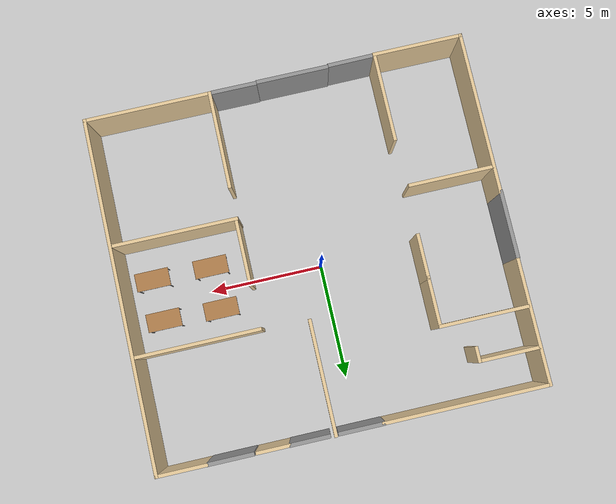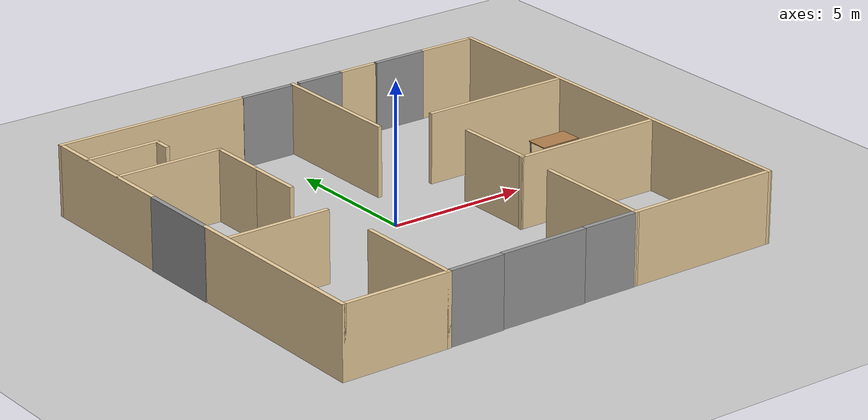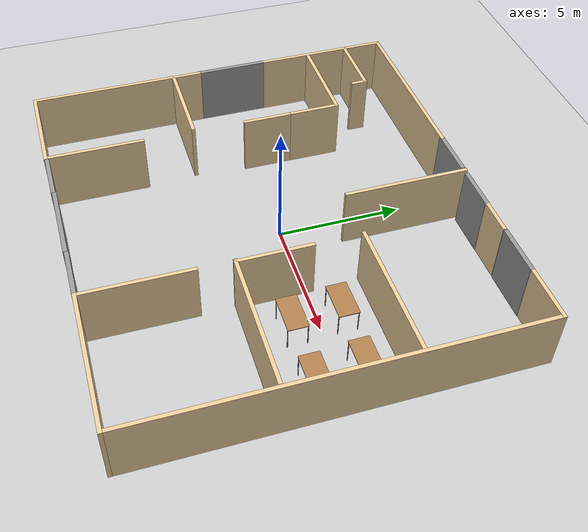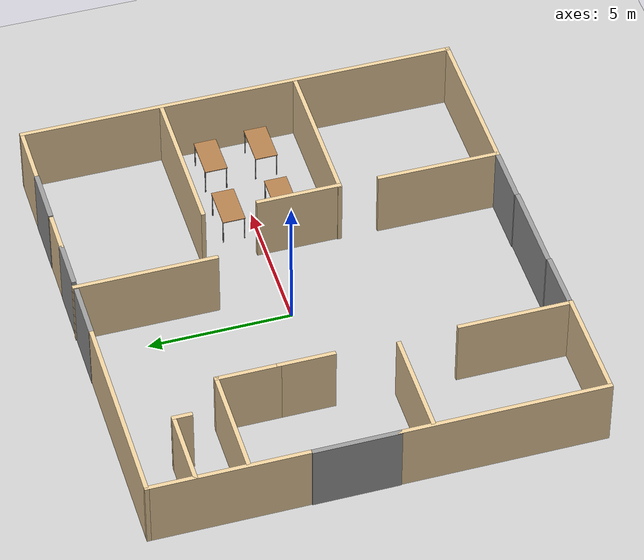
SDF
<sdf version="1.6">
 <world name="default">
  <model name="ground_plane">
   <static>1</static>
   <link name="link">
    <collision name="collision">
     <geometry><plane><normal>0 0 1</normal><size>100 100</size></plane></geometry>
     <surface><friction><ode><mu>100</mu><mu2>50</mu2></ode></friction></surface>
    </collision>
    <visual name="visual">
     <cast_shadows>0</cast_shadows>
     <geometry><plane><normal>0 0 1</normal><size>100 100</size></plane></geometry>
     <material>
      <script><uri>file://media/materials/scripts/gazebo.material</uri><name>Gazebo/Grey</name></script>
     </material>
    </visual>
   </link>
  </model>
  <model name="Building">
   <pose>0.22723 -0.57657 0 0 -0 0</pose>
   <link name="Door_1">
    <collision name="Door_1_Collision">
     <geometry><box><size>2 0.17 2.5</size></box></geometry>
     <pose>0 0 1.25 0 -0 0</pose>
    </collision>
    <visual name="Door_1_Visual">
     <pose>0 0 1.25 0 -0 0</pose>
     <geometry><box><size>2 0.17 2.5</size></box></geometry>
     <material>
      <script><uri>file://media/materials/scripts/gazebo.material</uri><name>Gazebo/Grey</name></script>
     </material>
    </visual>
    <pose>1.77302 -7.63321 0 0 -0 3.1393</pose>
   </link>
   <link name="Door_2">
    <collision name="Door_2_Collision">
     <geometry><box><size>2 0.17 2.5</size></box></geometry>
     <pose>0 0 1.25 0 -0 0</pose>
    </collision>
    <visual name="Door_2_Visual">
     <pose>0 0 1.25 0 -0 0</pose>
     <geometry><box><size>2 0.17 2.5</size></box></geometry>
     <material>
      <script><uri>file://media/materials/scripts/gazebo.material</uri><name>Gazebo/Grey</name></script>
     </material>
    </visual>
    <pose>-3.41797 -7.702 0 0 -0 -3.13381</pose>
   </link>
   <link name="Door_3">
    <collision name="Door_3_Collision">
     <geometry><box><size>1.75 0.17 2.5</size></box></geometry>
     <pose>0 0 1.25 0 -0 0</pose>
    </collision>
    <visual name="Door_3_Visual">
     <pose>0 0 1.25 0 -0 0</pose>
     <geometry><box><size>1.75 0.17 2.5</size></box></geometry>
     <material>
      <script><uri>file://media/materials/scripts/gazebo.material</uri><name>Gazebo/Grey</name></script>
     </material>
    </visual>
    <pose>1.87994 7.70603 0 0 -0 0</pose>
   </link>
   <link name="Wall_12">
    <collision name="Wall_12_Collision">
     <geometry><box><size>7.25 0.15 2.5</size></box></geometry>
     <pose>0 0 1.25 0 -0 0</pose>
    </collision>
    <visual name="Wall_12_Visual">
     <pose>0 0 1.25 0 -0 0</pose>
     <geometry><box><size>7.25 0.15 2.5</size></box></geometry>
     <material>
      <script><uri>file://media/materials/scripts/gazebo.material</uri><name>Gazebo/Grey</name></script>
      <ambient>0.921569 0.807843 0.615686 1</ambient>
     </material>
     <meta><layer>0</layer></meta>
    </visual>
    <pose>-8.3547 -4.19265 0 0 -0 -1.5708</pose>
   </link>
   <link name="Wall_14">
    <collision name="Wall_14_Collision">
     <geometry><box><size>7.25 0.15 2.5</size></box></geometry>
     <pose>0 0 1.25 0 -0 0</pose>
    </collision>
    <visual name="Wall_14_Visual">
     <pose>0 0 1.25 0 -0 0</pose>
     <geometry><box><size>7.25 0.15 2.5</size></box></geometry>
     <material>
      <script><uri>file://media/materials/scripts/gazebo.material</uri><name>Gazebo/Grey</name></script>
      <ambient>0.921569 0.807843 0.615686 1</ambient>
     </material>
     <meta><layer>0</layer></meta>
    </visual>
    <pose>-4.80157 7.70348 0 0 -0 0</pose>
   </link>
   <link name="Wall_16">
    <collision name="Wall_16_Collision">
     <geometry><box><size>5 0.15 2.5</size></box></geometry>
     <pose>0 0 1.25 0 -0 0</pose>
    </collision>
    <visual name="Wall_16_Visual">
     <pose>0 0 1.25 0 -0 0</pose>
     <geometry><box><size>5 0.15 2.5</size></box></geometry>
     <material>
      <script><uri>file://media/materials/scripts/gazebo.material</uri><name>Gazebo/Grey</name></script>
      <ambient>0.921569 0.807843 0.615686 1</ambient>
     </material>
     <meta><layer>0</layer></meta>
    </visual>
    <pose>0.791999 5.31765 0 0 -0 -1.5708</pose>
   </link>
   <link name="Wall_18">
    <collision name="Wall_18_Collision">
     <geometry><box><size>2.75 0.15 2.5</size></box></geometry>
     <pose>0 0 1.25 0 -0 0</pose>
    </collision>
    <visual name="Wall_18_Visual">
     <pose>0 0 1.25 0 -0 0</pose>
     <geometry><box><size>2.75 0.15 2.5</size></box></geometry>
     <material>
      <script><uri>file://media/materials/scripts/gazebo.material</uri><name>Gazebo/Grey</name></script>
      <ambient>0.921569 0.807843 0.615686 1</ambient>
     </material>
     <meta><layer>0</layer></meta>
    </visual>
    <pose>-7.02626 6.10787 0 0 -0 0</pose>
   </link>
   <link name="Wall_19">
    <collision name="Wall_19_Collision">
     <geometry><box><size>0.7 0.15 2.5</size></box></geometry>
     <pose>0 0 1.25 0 -0 0</pose>
    </collision>
    <visual name="Wall_19_Visual">
     <pose>0 0 1.25 0 -0 0</pose>
     <geometry><box><size>0.7 0.15 2.5</size></box></geometry>
     <material>
      <script><uri>file://media/materials/scripts/gazebo.material</uri><name>Gazebo/Grey</name></script>
      <ambient>0.921569 0.807843 0.615686 1</ambient>
     </material>
     <meta><layer>0</layer></meta>
    </visual>
    <pose>-5.72626 5.83287 0 0 -0 -1.5708</pose>
   </link>
   <link name="Wall_23">
    <collision name="Wall_23_Collision">
     <geometry><box><size>4 0.15 2.5</size></box></geometry>
     <pose>0 0 1.25 0 -0 0</pose>
    </collision>
    <visual name="Wall_23_Visual">
     <pose>0 0 1.25 0 -0 0</pose>
     <geometry><box><size>4 0.15 2.5</size></box></geometry>
     <material>
      <script><uri>file://media/materials/scripts/gazebo.material</uri><name>Gazebo/Grey</name></script>
      <ambient>0.921569 0.807843 0.615686 1</ambient>
     </material>
     <meta><layer>0</layer></meta>
    </visual>
    <pose>-6.40126 4.34787 0 0 -0 0</pose>
   </link>
   <link name="Wall_24">
    <collision name="Wall_24_Collision">
     <geometry><box><size>2.25 0.15 2.5</size></box></geometry>
     <pose>0 0 1.25 0 -0 0</pose>
    </collision>
    <visual name="Wall_24_Visual">
     <pose>0 0 1.25 0 -0 0</pose>
     <geometry><box><size>2.25 0.15 2.5</size></box></geometry>
     <material>
      <script><uri>file://media/materials/scripts/gazebo.material</uri><name>Gazebo/Grey</name></script>
      <ambient>0.921569 0.807843 0.615686 1</ambient>
     </material>
     <meta><layer>0</layer></meta>
    </visual>
    <pose>-4.47626 3.29787 0 0 -0 -1.5708</pose>
   </link>
   <link name="Wall_26">
    <collision name="Wall_26_Collision">
     <geometry><box><size>1.5 0.15 2.5</size></box></geometry>
     <pose>0 0 1.25 0 -0 0</pose>
    </collision>
    <visual name="Wall_26_Visual">
     <pose>0 0 1.25 0 -0 0</pose>
     <geometry><box><size>1.5 0.15 2.5</size></box></geometry>
     <material>
      <script><uri>file://media/materials/scripts/gazebo.material</uri><name>Gazebo/Grey</name></script>
      <ambient>0.921569 0.807843 0.615686 1</ambient>
     </material>
     <meta><layer>0</layer></meta>
    </visual>
    <pose>3.42874 7.70787 0 0 -0 0</pose>
   </link>
   <link name="Wall_28">
    <collision name="Wall_28_Collision">
     <geometry><box><size>2.25 0.15 2.5</size></box></geometry>
     <pose>0 0 1.25 0 -0 0</pose>
    </collision>
    <visual name="Wall_28_Visual">
     <pose>0 0 1.25 0 -0 0</pose>
     <geometry><box><size>2.25 0.15 2.5</size></box></geometry>
     <material>
      <script><uri>file://media/materials/scripts/gazebo.material</uri><name>Gazebo/Grey</name></script>
      <ambient>0.921569 0.807843 0.615686 1</ambient>
     </material>
     <meta><layer>0</layer></meta>
    </visual>
    <pose>7.30468 7.71385 0 0 -0 0</pose>
   </link>
   <link name="Wall_29">
    <collision name="Wall_29_Collision">
     <geometry><box><size>15.5 0.15 2.5</size></box></geometry>
     <pose>0 0 1.25 0 -0 0</pose>
    </collision>
    <visual name="Wall_29_Visual">
     <pose>0 0 1.25 0 -0 0</pose>
     <geometry><box><size>15.5 0.15 2.5</size></box></geometry>
     <material>
      <script><uri>file://media/materials/scripts/gazebo.material</uri><name>Gazebo/Grey</name></script>
      <ambient>0.921569 0.807843 0.615686 1</ambient>
     </material>
     <meta><layer>0</layer></meta>
    </visual>
    <pose>8.35468 0.038854 0 0 -0 -1.5708</pose>
   </link>
   <link name="Wall_31">
    <collision name="Wall_31_Collision">
     <geometry><box><size>3.75 0.15 2.5</size></box></geometry>
     <pose>0 0 1.25 0 -0 0</pose>
    </collision>
    <visual name="Wall_31_Visual">
     <pose>0 0 1.25 0 -0 0</pose>
     <geometry><box><size>3.75 0.15 2.5</size></box></geometry>
     <material>
      <script><uri>file://media/materials/scripts/gazebo.material</uri><name>Gazebo/Grey</name></script>
      <ambient>0.921569 0.807843 0.615686 1</ambient>
     </material>
     <meta><layer>0</layer></meta>
    </visual>
    <pose>-6.46277 -1.77396 0 0 -0 0</pose>
   </link>
   <link name="Wall_33">
    <collision name="Wall_33_Collision">
     <geometry><box><size>2 0.15 2.5</size></box></geometry>
     <pose>0 0 1.25 0 -0 0</pose>
    </collision>
    <visual name="Wall_33_Visual">
     <pose>0 0 1.25 0 -0 0</pose>
     <geometry><box><size>2 0.15 2.5</size></box></geometry>
     <material>
      <script><uri>file://media/materials/scripts/gazebo.material</uri><name>Gazebo/Grey</name></script>
      <ambient>0.921569 0.807843 0.615686 1</ambient>
     </material>
     <meta><layer>0</layer></meta>
    </visual>
    <pose>-4.47626 1.32287 0 0 -0 -1.5708</pose>
   </link>
   <link name="Wall_35">
    <collision name="Wall_35_Collision">
     <geometry><box><size>5.5 0.15 2.5</size></box></geometry>
     <pose>0 0 1.25 0 -0 0</pose>
    </collision>
    <visual name="Wall_35_Visual">
     <pose>0 0 1.25 0 -0 0</pose>
     <geometry><box><size>5.5 0.15 2.5</size></box></geometry>
     <material>
      <script><uri>file://media/materials/scripts/gazebo.material</uri><name>Gazebo/Grey</name></script>
      <ambient>0.921569 0.807843 0.615686 1</ambient>
     </material>
     <meta><layer>0</layer></meta>
    </visual>
    <pose>5.58136 2.77318 0 0 -0 0</pose>
   </link>
   <link name="Wall_38">
    <collision name="Wall_38_Collision">
     <geometry><box><size>3 0.15 2.5</size></box></geometry>
     <pose>0 0 1.25 0 -0 0</pose>
    </collision>
    <visual name="Wall_38_Visual">
     <pose>0 0 1.25 0 -0 0</pose>
     <geometry><box><size>3 0.15 2.5</size></box></geometry>
     <material>
      <script><uri>file://media/materials/scripts/gazebo.material</uri><name>Gazebo/Grey</name></script>
      <ambient>0.921569 0.807843 0.615686 1</ambient>
     </material>
     <meta><layer>0</layer></meta>
    </visual>
    <pose>2.90822 -0.593394 0 0 -0 -1.5708</pose>
   </link>
   <link name="Wall_39">
    <collision name="Wall_39_Collision">
     <geometry><box><size>5.46978 0.15 2.5</size></box></geometry>
     <pose>0 0 1.25 0 -0 0</pose>
    </collision>
    <visual name="Wall_39_Visual">
     <pose>0 0 1.25 0 -0 0</pose>
     <geometry><box><size>5.46978 0.15 2.5</size></box></geometry>
     <material>
      <script><uri>file://media/materials/scripts/gazebo.material</uri><name>Gazebo/Grey</name></script>
      <ambient>0.921569 0.807843 0.615686 1</ambient>
     </material>
     <meta><layer>0</layer></meta>
    </visual>
    <pose>5.53786 -2.02643 0 0 -0 -0.00302</pose>
   </link>
   <link name="Wall_42">
    <collision name="Wall_42_Collision">
     <geometry><box><size>5.65695 0.15 2.5</size></box></geometry>
     <pose>0 0 1.25 0 -0 0</pose>
    </collision>
    <visual name="Wall_42_Visual">
     <pose>0 0 1.25 0 -0 0</pose>
     <geometry><box><size>5.65695 0.15 2.5</size></box></geometry>
     <material>
      <script><uri>file://media/materials/scripts/gazebo.material</uri><name>Gazebo/Grey</name></script>
      <ambient>0.921569 0.807843 0.615686 1</ambient>
     </material>
     <meta><layer>0</layer></meta>
    </visual>
    <pose>5.60121 -7.6353 0 0 -0 -0.000306</pose>
   </link>
   <link name="Wall_44">
    <collision name="Wall_44_Collision">
     <geometry><box><size>4.34305 0.15 2.5</size></box></geometry>
     <pose>0 0 1.25 0 -0 0</pose>
    </collision>
    <visual name="Wall_44_Visual">
     <pose>0 0 1.25 0 -0 0</pose>
     <geometry><box><size>4.34305 0.15 2.5</size></box></geometry>
     <material>
      <script><uri>file://media/materials/scripts/gazebo.material</uri><name>Gazebo/Grey</name></script>
      <ambient>0.921569 0.807843 0.615686 1</ambient>
     </material>
     <meta><layer>0</layer></meta>
    </visual>
    <pose>2.85823 -5.53796 0 0 -0 -1.5758</pose>
   </link>
   <link name="Wall_46">
    <collision name="Wall_46_Collision">
     <geometry><box><size>4 0.15 2.5</size></box></geometry>
     <pose>0 0 1.25 0 -0 0</pose>
    </collision>
    <visual name="Wall_46_Visual">
     <pose>0 0 1.25 0 -0 0</pose>
     <geometry><box><size>4 0.15 2.5</size></box></geometry>
     <material>
      <script><uri>file://media/materials/scripts/gazebo.material</uri><name>Gazebo/Grey</name></script>
      <ambient>0.921569 0.807843 0.615686 1</ambient>
     </material>
     <meta><layer>0</layer></meta>
    </visual>
    <pose>-6.42971 -7.74265 0 0 -0 0</pose>
   </link>
   <link name="Wall_48">
    <collision name="Wall_48_Collision">
     <geometry><box><size>4 0.15 2.5</size></box></geometry>
     <pose>0 0 1.25 0 -0 0</pose>
    </collision>
    <visual name="Wall_48_Visual">
     <pose>0 0 1.25 0 -0 0</pose>
     <geometry><box><size>4 0.15 2.5</size></box></geometry>
     <material>
      <script><uri>file://media/materials/scripts/gazebo.material</uri><name>Gazebo/Grey</name></script>
      <ambient>0.921569 0.807843 0.615686 1</ambient>
     </material>
     <meta><layer>0</layer></meta>
    </visual>
    <pose>-4.50471 -5.81765 0 0 -0 1.5708</pose>
   </link>
   <link name="Wall_9">
    <collision name="Wall_9_Collision">
     <geometry><box><size>5.5 0.15 2.5</size></box></geometry>
     <pose>0 0 1.25 0 -0 0</pose>
    </collision>
    <visual name="Wall_9_Visual">
     <pose>0 0 1.25 0 -0 0</pose>
     <geometry><box><size>5.5 0.15 2.5</size></box></geometry>
     <material>
      <script><uri>file://media/materials/scripts/gazebo.material</uri><name>Gazebo/Grey</name></script>
      <ambient>0.921569 0.807843 0.615686 1</ambient>
     </material>
     <meta><layer>0</layer></meta>
    </visual>
    <pose>-8.35157 5.02848 0 0 -0 -1.5708</pose>
   </link>
   <link name="Window_2">
    <collision name="Window_2_Collision">
     <geometry><box><size>3 0.17 2.5</size></box></geometry>
     <pose>0 0 1.25 0 -0 0</pose>
    </collision>
    <visual name="Window_2_Visual">
     <pose>0 0 1.25 0 -0 0</pose>
     <geometry><box><size>3 0.17 2.5</size></box></geometry>
     <material>
      <script><uri>file://media/materials/scripts/gazebo.material</uri><name>Gazebo/Grey</name></script>
     </material>
    </visual>
    <pose>-8.3671 0.789602 0 0 0 -1.5705</pose>
   </link>
   <link name="Window_3">
    <collision name="Window_3_Collision">
     <geometry><box><size>2 0.17 2.5</size></box></geometry>
     <pose>0 0 1.25 0 -0 0</pose>
    </collision>
    <visual name="Window_3_Visual">
     <pose>0 0 1.25 0 -0 0</pose>
     <geometry><box><size>2 0.17 2.5</size></box></geometry>
     <material>
      <script><uri>file://media/materials/scripts/gazebo.material</uri><name>Gazebo/Grey</name></script>
     </material>
    </visual>
    <pose>5.22216 7.70864 0 0 -0 0</pose>
   </link>
   <link name="Window_4">
    <collision name="Window_4_Collision">
     <geometry><box><size>3.2 0.17 2.5</size></box></geometry>
     <pose>0 0 1.25 0 -0 0</pose>
    </collision>
    <visual name="Window_4_Visual">
     <pose>0 0 1.25 0 -0 0</pose>
     <geometry><box><size>3.2 0.17 2.5</size></box></geometry>
     <material>
      <script><uri>file://media/materials/scripts/gazebo.material</uri><name>Gazebo/Grey</name></script>
     </material>
    </visual>
    <pose>-0.82762 -7.66069 0 0 -0 0</pose>
   </link>
   <link name="Window_5">
    <collision name="Window_5_Collision">
     <geometry><box><size>2 0.17 2.5</size></box></geometry>
     <pose>0 0 1.25 0 -0 0</pose>
    </collision>
    <visual name="Window_5_Visual">
     <pose>0 0 1.25 0 -0 0</pose>
     <geometry><box><size>2 0.17 2.5</size></box></geometry>
     <material>
      <script><uri>file://media/materials/scripts/gazebo.material</uri><name>Gazebo/Grey</name></script>
     </material>
    </visual>
    <pose>-0.31136 7.70603 0 0 -0 0</pose>
   </link>
   <static>1</static>
  </model>
  <model name="table_clone">
   <static>1</static>
   <link name="link">
    <collision name="surface">
     <pose>0 0 1 0 -0 0</pose>
     <geometry><box><size>1.5 0.8 0.03</size></box></geometry>
     <surface><friction><ode><mu>0.6</mu><mu2>0.6</mu2></ode></friction></surface>
    </collision>
    <visual name="visual1">
     <pose>0 0 1 0 -0 0</pose>
     <geometry><box><size>1.5 0.8 0.03</size></box></geometry>
     <material>
      <script><uri>file://media/materials/scripts/gazebo.material</uri><name>Gazebo/Wood</name></script>
     </material>
    </visual>
    <collision name="front_left_leg">
     <pose>0.68 0.38 0.5 0 -0 0</pose>
     <geometry><cylinder><radius>0.02</radius><length>1</length></cylinder></geometry>
    </collision>
    <visual name="front_left_leg">
     <pose>0.68 0.38 0.5 0 -0 0</pose>
     <geometry><cylinder><radius>0.02</radius><length>1</length></cylinder></geometry>
     <material>
      <script><uri>file://media/materials/scripts/gazebo.material</uri><name>Gazebo/Grey</name></script>
     </material>
    </visual>
    <collision name="front_right_leg">
     <pose>0.68 -0.38 0.5 0 -0 0</pose>
     <geometry><cylinder><radius>0.02</radius><length>1</length></cylinder></geometry>
    </collision>
    <visual name="front_right_leg">
     <pose>0.68 -0.38 0.5 0 -0 0</pose>
     <geometry><cylinder><radius>0.02</radius><length>1</length></cylinder></geometry>
     <material>
      <script><uri>file://media/materials/scripts/gazebo.material</uri><name>Gazebo/Grey</name></script>
     </material>
    </visual>
    <collision name="back_right_leg">
     <pose>-0.68 -0.38 0.5 0 -0 0</pose>
     <geometry><cylinder><radius>0.02</radius><length>1</length></cylinder></geometry>
    </collision>
    <visual name="back_right_leg">
     <pose>-0.68 -0.38 0.5 0 -0 0</pose>
     <geometry><cylinder><radius>0.02</radius><length>1</length></cylinder></geometry>
     <material>
      <script><uri>file://media/materials/scripts/gazebo.material</uri><name>Gazebo/Grey</name></script>
     </material>
    </visual>
    <collision name="back_left_leg">
     <pose>-0.68 0.38 0.5 0 -0 0</pose>
     <geometry><cylinder><radius>0.02</radius><length>1</length></cylinder></geometry>
    </collision>
    <visual name="back_left_leg">
     <pose>-0.68 0.38 0.5 0 -0 0</pose>
     <geometry><cylinder><radius>0.02</radius><length>1</length></cylinder></geometry>
     <material>
      <script><uri>file://media/materials/scripts/gazebo.material</uri><name>Gazebo/Grey</name></script>
     </material>
    </visual>
   </link>
   <pose>4.74237 -1.00866 0 0 -0 0</pose>
  </model>
  <model name="table_clone_0">
   <static>1</static>
   <link name="link">
    <collision name="surface">
     <pose>0 0 1 0 -0 0</pose>
     <geometry><box><size>1.5 0.8 0.03</size></box></geometry>
     <surface><friction><ode><mu>0.6</mu><mu2>0.6</mu2></ode></friction></surface>
    </collision>
    <visual name="visual1">
     <pose>0 0 1 0 -0 0</pose>
     <geometry><box><size>1.5 0.8 0.03</size></box></geometry>
     <material>
      <script><uri>file://media/materials/scripts/gazebo.material</uri><name>Gazebo/Wood</name></script>
     </material>
    </visual>
    <collision name="front_left_leg">
     <pose>0.68 0.38 0.5 0 -0 0</pose>
     <geometry><cylinder><radius>0.02</radius><length>1</length></cylinder></geometry>
    </collision>
    <visual name="front_left_leg">
     <pose>0.68 0.38 0.5 0 -0 0</pose>
     <geometry><cylinder><radius>0.02</radius><length>1</length></cylinder></geometry>
     <material>
      <script><uri>file://media/materials/scripts/gazebo.material</uri><name>Gazebo/Grey</name></script>
     </material>
    </visual>
    <collision name="front_right_leg">
     <pose>0.68 -0.38 0.5 0 -0 0</pose>
     <geometry><cylinder><radius>0.02</radius><length>1</length></cylinder></geometry>
    </collision>
    <visual name="front_right_leg">
     <pose>0.68 -0.38 0.5 0 -0 0</pose>
     <geometry><cylinder><radius>0.02</radius><length>1</length></cylinder></geometry>
     <material>
      <script><uri>file://media/materials/scripts/gazebo.material</uri><name>Gazebo/Grey</name></script>
     </material>
    </visual>
    <collision name="back_right_leg">
     <pose>-0.68 -0.38 0.5 0 -0 0</pose>
     <geometry><cylinder><radius>0.02</radius><length>1</length></cylinder></geometry>
    </collision>
    <visual name="back_right_leg">
     <pose>-0.68 -0.38 0.5 0 -0 0</pose>
     <geometry><cylinder><radius>0.02</radius><length>1</length></cylinder></geometry>
     <material>
      <script><uri>file://media/materials/scripts/gazebo.material</uri><name>Gazebo/Grey</name></script>
     </material>
    </visual>
    <collision name="back_left_leg">
     <pose>-0.68 0.38 0.5 0 -0 0</pose>
     <geometry><cylinder><radius>0.02</radius><length>1</length></cylinder></geometry>
    </collision>
    <visual name="back_left_leg">
     <pose>-0.68 0.38 0.5 0 -0 0</pose>
     <geometry><cylinder><radius>0.02</radius><length>1</length></cylinder></geometry>
     <material>
      <script><uri>file://media/materials/scripts/gazebo.material</uri><name>Gazebo/Grey</name></script>
     </material>
    </visual>
   </link>
   <pose>7.34773 -1.01686 0 0 -0 0</pose>
  </model>
  <model name="table_clone_1">
   <static>1</static>
   <link name="link">
    <collision name="surface">
     <pose>0 0 1 0 -0 0</pose>
     <geometry><box><size>1.5 0.8 0.03</size></box></geometry>
     <surface><friction><ode><mu>0.6</mu><mu2>0.6</mu2></ode></friction></surface>
    </collision>
    <visual name="visual1">
     <pose>0 0 1 0 -0 0</pose>
     <geometry><box><size>1.5 0.8 0.03</size></box></geometry>
     <material>
      <script><uri>file://media/materials/scripts/gazebo.material</uri><name>Gazebo/Wood</name></script>
     </material>
    </visual>
    <collision name="front_left_leg">
     <pose>0.68 0.38 0.5 0 -0 0</pose>
     <geometry><cylinder><radius>0.02</radius><length>1</length></cylinder></geometry>
    </collision>
    <visual name="front_left_leg">
     <pose>0.68 0.38 0.5 0 -0 0</pose>
     <geometry><cylinder><radius>0.02</radius><length>1</length></cylinder></geometry>
     <material>
      <script><uri>file://media/materials/scripts/gazebo.material</uri><name>Gazebo/Grey</name></script>
     </material>
    </visual>
    <collision name="front_right_leg">
     <pose>0.68 -0.38 0.5 0 -0 0</pose>
     <geometry><cylinder><radius>0.02</radius><length>1</length></cylinder></geometry>
    </collision>
    <visual name="front_right_leg">
     <pose>0.68 -0.38 0.5 0 -0 0</pose>
     <geometry><cylinder><radius>0.02</radius><length>1</length></cylinder></geometry>
     <material>
      <script><uri>file://media/materials/scripts/gazebo.material</uri><name>Gazebo/Grey</name></script>
     </material>
    </visual>
    <collision name="back_right_leg">
     <pose>-0.68 -0.38 0.5 0 -0 0</pose>
     <geometry><cylinder><radius>0.02</radius><length>1</length></cylinder></geometry>
    </collision>
    <visual name="back_right_leg">
     <pose>-0.68 -0.38 0.5 0 -0 0</pose>
     <geometry><cylinder><radius>0.02</radius><length>1</length></cylinder></geometry>
     <material>
      <script><uri>file://media/materials/scripts/gazebo.material</uri><name>Gazebo/Grey</name></script>
     </material>
    </visual>
    <collision name="back_left_leg">
     <pose>-0.68 0.38 0.5 0 -0 0</pose>
     <geometry><cylinder><radius>0.02</radius><length>1</length></cylinder></geometry>
    </collision>
    <visual name="back_left_leg">
     <pose>-0.68 0.38 0.5 0 -0 0</pose>
     <geometry><cylinder><radius>0.02</radius><length>1</length></cylinder></geometry>
     <material>
      <script><uri>file://media/materials/scripts/gazebo.material</uri><name>Gazebo/Grey</name></script>
     </material>
    </visual>
   </link>
   <pose>4.67887 0.897694 0 0 -0 0</pose>
  </model>
  <model name="table_clone_2">
   <static>1</static>
   <link name="link">
    <collision name="surface">
     <pose>0 0 1 0 -0 0</pose>
     <geometry><box><size>1.5 0.8 0.03</size></box></geometry>
     <surface><friction><ode><mu>0.6</mu><mu2>0.6</mu2></ode></friction></surface>
    </collision>
    <visual name="visual1">
     <pose>0 0 1 0 -0 0</pose>
     <geometry><box><size>1.5 0.8 0.03</size></box></geometry>
     <material>
      <script><uri>file://media/materials/scripts/gazebo.material</uri><name>Gazebo/Wood</name></script>
     </material>
    </visual>
    <collision name="front_left_leg">
     <pose>0.68 0.38 0.5 0 -0 0</pose>
     <geometry><cylinder><radius>0.02</radius><length>1</length></cylinder></geometry>
    </collision>
    <visual name="front_left_leg">
     <pose>0.68 0.38 0.5 0 -0 0</pose>
     <geometry><cylinder><radius>0.02</radius><length>1</length></cylinder></geometry>
     <material>
      <script><uri>file://media/materials/scripts/gazebo.material</uri><name>Gazebo/Grey</name></script>
     </material>
    </visual>
    <collision name="front_right_leg">
     <pose>0.68 -0.38 0.5 0 -0 0</pose>
     <geometry><cylinder><radius>0.02</radius><length>1</length></cylinder></geometry>
    </collision>
    <visual name="front_right_leg">
     <pose>0.68 -0.38 0.5 0 -0 0</pose>
     <geometry><cylinder><radius>0.02</radius><length>1</length></cylinder></geometry>
     <material>
      <script><uri>file://media/materials/scripts/gazebo.material</uri><name>Gazebo/Grey</name></script>
     </material>
    </visual>
    <collision name="back_right_leg">
     <pose>-0.68 -0.38 0.5 0 -0 0</pose>
     <geometry><cylinder><radius>0.02</radius><length>1</length></cylinder></geometry>
    </collision>
    <visual name="back_right_leg">
     <pose>-0.68 -0.38 0.5 0 -0 0</pose>
     <geometry><cylinder><radius>0.02</radius><length>1</length></cylinder></geometry>
     <material>
      <script><uri>file://media/materials/scripts/gazebo.material</uri><name>Gazebo/Grey</name></script>
     </material>
    </visual>
    <collision name="back_left_leg">
     <pose>-0.68 0.38 0.5 0 -0 0</pose>
     <geometry><cylinder><radius>0.02</radius><length>1</length></cylinder></geometry>
    </collision>
    <visual name="back_left_leg">
     <pose>-0.68 0.38 0.5 0 -0 0</pose>
     <geometry><cylinder><radius>0.02</radius><length>1</length></cylinder></geometry>
     <material>
      <script><uri>file://media/materials/scripts/gazebo.material</uri><name>Gazebo/Grey</name></script>
     </material>
    </visual>
   </link>
   <pose>7.21856 0.827869 0 0 -0 0</pose>
  </model>
 </world>
</sdf>
